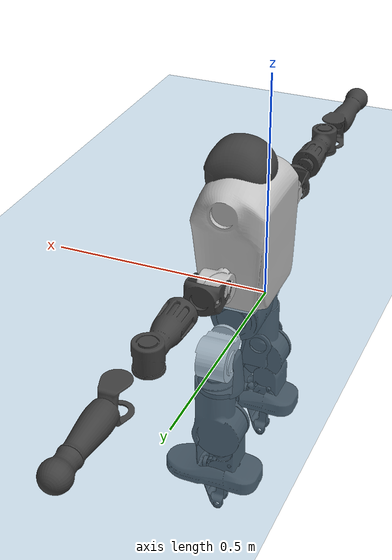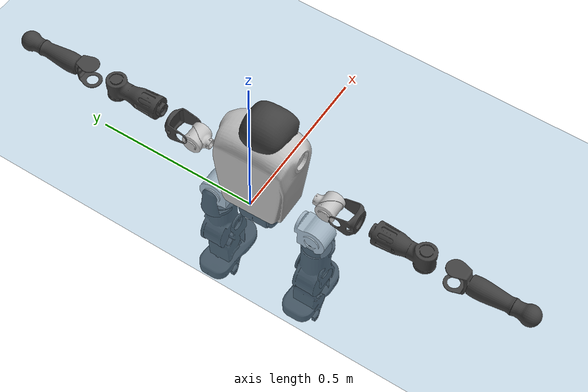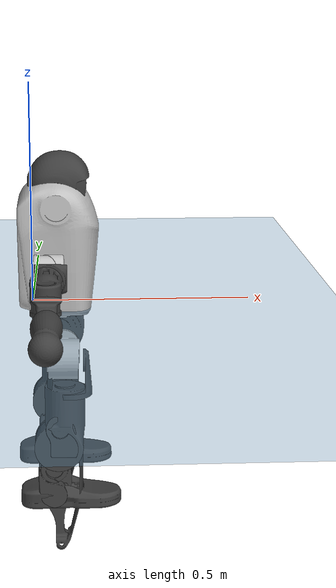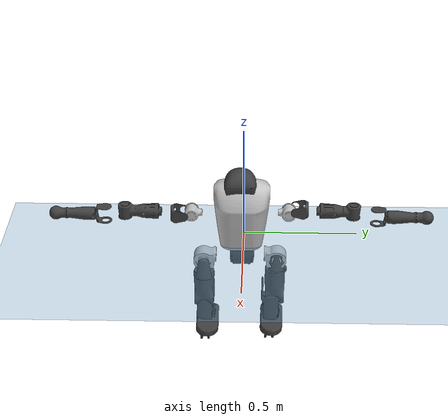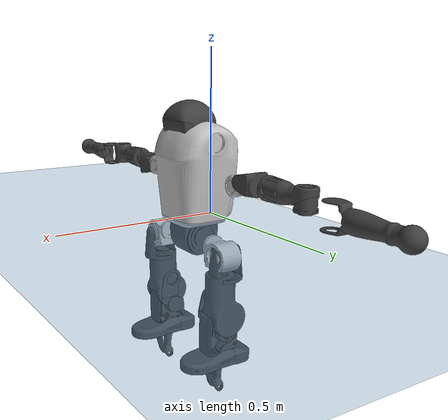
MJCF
<mujoco model="T1">
  <compiler angle="radian" assetdir="assets" balanceinertia="true" inertiafromgeom="false"/>

  <option timestep="0.005" density="1.2" viscosity="2e-05"/>

  <size nkey="1"/>

  <visual>
    <quality shadowsize="8192"/>
    <map shadowclip="0.5"/>
  </visual>

  <default>
    <default class="/">
      <joint armature="0.01" damping="0.01" frictionloss="0.1"/>
      <geom contype="0" conaffinity="0" group="1" solref="-1000 -80"/>
      <site size="0.01 0.005 0.005" group="5"/>
      <general forcelimited="true" biastype="affine" gainprm="25" biasprm="0 -25 -0.6"/>
      <default class="t1">
        <geom rgba="0.25 0.25 0.25 1"/>
        <default class="visual">
          <geom type="mesh" group="2"/>
        </default>
        <default class="collision">
          <geom group="3"/>
        </default>
        <default class="foot">
          <geom size="0.1115 0.05 0.015" type="box" condim="6" group="4" priority="1" solimp="0.015 1 0.015"/>
        </default>
        <default class="reward_collision_sphere">
          <geom group="5" rgba="1 0 0 1"/>
        </default>
      </default>
    </default>
  </default>

  <asset>
    <texture type="skybox" colorspace="auto" name="//unnamed_texture_0" builtin="gradient" rgb1="0.95 0.95 0.95" rgb2="0.95 0.95 0.95" width="100" height="600"/>
    <texture type="2d" colorspace="auto" name="texplane" builtin="checker" rgb1="0.345 0.575 0.748" rgb2="0.345 0.575 0.748" markrgb="1 1 1" width="512" height="512"/>
    <material name="MatPlane" class="/" texture="texplane" texuniform="true" texrepeat="2 2" specular="0.9"/>
    <mesh name="Trunk" class="/" file="Trunk.stl"/>
    <mesh name="H1" class="/" file="H1.stl"/>
    <mesh name="H2" class="/" file="H2.stl"/>
    <mesh name="AL1" class="/" file="AL1.stl"/>
    <mesh name="AL2" class="/" file="AL2.stl"/>
    <mesh name="AL3" class="/" file="AL3.stl"/>
    <mesh name="left_hand_link" class="/" file="left_hand_link.stl"/>
    <mesh name="AR1" class="/" file="AR1.stl"/>
    <mesh name="AR2" class="/" file="AR2.stl"/>
    <mesh name="AR3" class="/" file="AR3.stl"/>
    <mesh name="right_hand_link" class="/" file="right_hand_link.stl"/>
    <mesh name="Waist" class="/" file="Waist.stl"/>
    <mesh name="Hip_Pitch_Left" class="/" file="Hip_Pitch_Left.stl"/>
    <mesh name="Hip_Roll_Left" class="/" file="Hip_Roll_Left.stl"/>
    <mesh name="Hip_Yaw_Left" class="/" file="Hip_Yaw_Left.stl"/>
    <mesh name="Shank_Left" class="/" file="Shank_Left.stl"/>
    <mesh name="Ankle_Cross_Left" class="/" file="Ankle_Cross_Left.stl"/>
    <mesh name="left_foot_link" class="/" file="left_foot_link.stl"/>
    <mesh name="Hip_Pitch_Right" class="/" file="Hip_Pitch_Right.stl"/>
    <mesh name="Hip_Roll_Right" class="/" file="Hip_Roll_Right.stl"/>
    <mesh name="Hip_Yaw_Right" class="/" file="Hip_Yaw_Right.stl"/>
    <mesh name="Shank_Right" class="/" file="Shank_Right.stl"/>
    <mesh name="Ankle_Cross_Right" class="/" file="Ankle_Cross_Right.stl"/>
    <mesh name="right_foot_link" class="/" file="right_foot_link.stl"/>
  </asset>

  <worldbody>
    <geom name="floor" class="/" size="100 100 0.125" type="plane" group="0" material="MatPlane"/>
    <light name="toplight_shadow" class="/" pos="0 0 5" dir="0.0990148 0.0990148 -0.990148" type="directional" ambient="0.04 0.04 0.04" diffuse="0.55 0.55 0.55" specular="0.12 0.12 0.12"/>
    <light name="toplight_fill" class="/" pos="0 0 5" dir="0.0990148 0.0990148 -0.990148" type="directional" castshadow="false" ambient="0.04 0.04 0.04" diffuse="0.3 0.3 0.3" specular="0.08 0.08 0.08"/>
    <body name="trunk" childclass="t1" pos="-2.58964e-05 -0.0106681 0.0150883" quat="0.999968 -0.00612547 -0.000811864 0.00512128">
      <inertial pos="0.0480543 0.000567874 0.055522" quat="0.999954 0.00292331 -0.00911024 -0.000166406" mass="13.7339" diaginertia="0.0773584 0.845363 0.0037223"/>
      <joint name="//unnamed_joint_0" type="free" armature="0" damping="0" frictionloss="0"/>
      <geom name="//unnamed_geom_1" class="visual" rgba="0.76 0.76 0.76 1" mesh="Trunk"/>
      <geom name="//unnamed_geom_2" class="collision" size="0.0766715 0.102229 0.153343" pos="0.0549387 0 0.0660803" type="box"/>
      <geom name="//unnamed_geom_3" class="reward_collision_sphere" size="0.117563" pos="0.0549387 0 0.0550669"/>
      <geom name="//unnamed_geom_4" class="reward_collision_sphere" size="0.0153343" pos="0.0549387 0.136046 0"/>
      <geom name="//unnamed_geom_5" class="reward_collision_sphere" size="0.0153343" pos="0.0549387 -0.136046 0"/>
      <geom name="//unnamed_geom_6" class="reward_collision_sphere" size="0.0153343" pos="0.0549387 0.171258 0.0991205"/>
      <geom name="//unnamed_geom_7" class="reward_collision_sphere" size="0.0153343" pos="0.0549387 -0.171258 0.0991205"/>
      <site name="imu" pos="0.0744372 0.0149496 0.00250248" size="0.0102229"/>
      <camera name="track" pos="0 -3.20109 0" quat="0.707107 0.707107 0 0" mode="trackcom"/>
      <camera name="ego_camera" pos="0.111709 0 0.231281" quat="-0.5 -0.5 0.5 0.5"/>
      <body name="H1" pos="0.0463914 -0.000429333 0.122563" quat="0.999974 0.00401562 0.00452243 0.00389276">
        <inertial pos="-0.0130853 -0.0111293 0.0259592" quat="0.757317 -0.0101752 -0.000630188 0.652968" mass="0.3881" diaginertia="0.000129471 0.00183368 8.16454e-06"/>
        <joint name="AAHead_yaw" pos="0 0 0" axis="-0.012009 -0.00113501 0.999927" stiffness="0.00243642" range="-1.23652 1.69152" armature="0.00892145" damping="0.0485992" frictionloss="0.0636344"/>
        <geom name="//unnamed_geom_8" class="visual" mesh="H1"/>
        <body name="H2" pos="0.00571161 -0.00596794 0.0224144" quat="0.99997 -0.00112331 -0.00712888 0.00293957">
          <inertial pos="0.00267957 -0.00248618 0.0545045" quat="0.988681 0.106005 -0.0712382 -0.078732" mass="0.80539" diaginertia="0.00149421 0.0232102 8.79688e-05"/>
          <joint name="Head_pitch" pos="0 0 0" axis="-0.0591718 -0.997311 0.043237" stiffness="0.042501" range="-0.985381 0.0494584" armature="0.00362001" damping="0" frictionloss="0.022472"/>
          <geom name="//unnamed_geom_9" class="visual" mesh="H2"/>
          <geom name="//unnamed_geom_10" class="collision" size="0.081783" pos="0.00915646 0 0.0605736"/>
          <geom name="//unnamed_geom_11" class="reward_collision_sphere" size="0.0920058" pos="0.0183129 0 0.0550669"/>
        </body>
      </body>
      <body name="AL1" pos="0.0374833 0.160128 0.111263" quat="0.999998 0.000294175 0.00181613 0.000248321">
        <inertial pos="0.015254 0.0799837 0.00865802" quat="0.518828 0.490581 -0.537353 0.448777" mass="0.63525" diaginertia="0.000916098 0.0121038 1.72944e-05"/>
        <joint name="Left_Shoulder_Pitch" pos="0 0 0" axis="-0.00945781 0.999913 0.00915013" range="-3.22431 1.2262" armature="0.00849454" damping="0" frictionloss="0.142208"/>
        <geom name="//unnamed_geom_12" class="visual" rgba="0.76 0.76 0.76 1" mesh="AL1"/>
        <body name="AL2" pos="-0.00124854 0.0761786 0.0153039" quat="0.999972 -0.00310841 -0.00634864 -0.00233302">
          <inertial pos="0.0109232 0.0617397 0.0137157" quat="0.504792 0.501466 -0.509686 0.48367" mass="0.143195" diaginertia="0.000274362 0.00406388 8.2262e-06"/>
          <joint name="Left_Shoulder_Roll" pos="0 0 0" axis="-0.997134 -0.0159511 0.0739497" range="-1.57877 1.84705" armature="0.00800299" damping="0" frictionloss="0.179005"/>
          <geom name="//unnamed_geom_13" class="visual" mesh="AL2"/>
          <body name="AL3" pos="0.0154023 0.105702 0.00392449" quat="0.999999 -0.000320081 0.00148372 0.000104987">
            <inertial pos="0.00460644 0.136365 -0.0139788" quat="0.707014 0.707198 0.00036619 0.00127698" mass="1.10728" diaginertia="0.00734933 0.13763 3.47637e-05"/>
            <joint name="Left_Elbow_Pitch" pos="0 0 0" axis="0.0194244 -0.997455 -0.0685998" range="-2.36383 2.26079" armature="0.0138764" damping="0.01105" frictionloss="0.0615186"/>
            <geom name="//unnamed_geom_14" class="visual" mesh="AL3"/>
            <geom name="//unnamed_geom_15" class="collision" size="0.0306686 0.0766715" pos="0 0.0800273 0" quat="0.707105 0.707108 0 0" type="cylinder"/>
            <geom name="//unnamed_geom_16" class="reward_collision_sphere" size="0.0368023"/>
            <body name="left_hand_link" pos="0.0108112 0.249995 -0.0160976" quat="0.999993 0.00239439 -0.00171932 -0.00208643">
              <inertial pos="0.000152299 0.166876 -0.0113762" quat="0.705939 0.708238 0.00158579 0.0068552" mass="0.308376" diaginertia="0.00502539 0.0590274 8.76744e-06"/>
              <joint name="Left_Elbow_Yaw" pos="0 0 0" axis="0.0349295 0.0594757 0.997618" stiffness="0.0582405" range="-2.57177 -0.0280905" armature="0.00884749" damping="0.00147089" frictionloss="0.0485372"/>
              <geom name="//unnamed_geom_17" class="visual" mesh="left_hand_link"/>
              <geom name="//unnamed_geom_18" class="collision" size="0.0306686 0.0894501" pos="0 0.208071 0" quat="0.707105 0.707108 0 0" type="cylinder"/>
              <geom name="//unnamed_geom_19" class="reward_collision_sphere" size="0.0511143"/>
              <geom name="//unnamed_geom_20" class="reward_collision_sphere" size="0.03578" pos="0 0.17606 0"/>
              <geom name="//unnamed_geom_21" class="reward_collision_sphere" size="0.03578" pos="0 0.344117 0"/>
            </body>
          </body>
        </body>
      </body>
      <body name="AR1" pos="0.0403661 -0.172739 0.107334" quat="0.999971 0.00213014 0.00702776 0.0019557">
        <inertial pos="-0.000738542 -0.0635675 -0.00522126" quat="0.537308 0.476313 -0.484361 0.499821" mass="0.629056" diaginertia="0.00111188 0.0147594 1.6283e-05"/>
        <joint name="Right_Shoulder_Pitch" pos="0 0 0" axis="-0.0120669 -0.999528 -0.0282476" stiffness="0.0679786" range="-1.23788 3.09612" armature="0.0134952" damping="0.0745299" frictionloss="0.0862345"/>
        <geom name="//unnamed_geom_22" class="visual" rgba="0.76 0.76 0.76 1" mesh="AR1"/>
        <body name="AR2" pos="0.00108306 -0.081816 -0.006438" quat="0.999987 -0.00449869 0.00144086 -0.00212807">
          <inertial pos="0.011301 -0.0613962 -0.0110475" quat="0.514281 0.486508 -0.514955 0.48337" mass="0.198017" diaginertia="0.000204129 0.0037659 1.03679e-05"/>
          <joint name="Right_Shoulder_Roll" pos="0 0 0" axis="-1 0.000196974 -0.000741297" stiffness="0.0115401" range="-1.85939 1.56397" armature="0.00900319" damping="0" frictionloss="0.0322122"/>
          <geom name="//unnamed_geom_23" class="visual" mesh="AR2"/>
          <body name="AR3" pos="-0.00525434 -0.10993 0.00664316" quat="0.999996 0.00282647 -0.000638761 -0.000621533">
            <inertial pos="0.0156046 -0.137617 -0.00526542" quat="0.688824 0.723103 0.0507756 -0.00809193" mass="0.837424" diaginertia="0.00887932 0.147858 3.12226e-05"/>
            <joint name="Right_Elbow_Pitch" pos="0 0 0" axis="0.0269194 0.998935 0.0374642" stiffness="0.0812272" range="-2.25363 2.45025" armature="0.0171249" damping="0.0139018" frictionloss="0.117691"/>
            <geom name="//unnamed_geom_24" class="visual" mesh="AR3"/>
            <geom name="//unnamed_geom_25" class="collision" size="0.0306686 0.0766715" pos="0 -0.0800273 0" quat="0.707105 0.707108 0 0" type="cylinder"/>
            <geom name="//unnamed_geom_26" class="reward_collision_sphere" size="0.0368023"/>
            <body name="right_hand_link" pos="0.00306748 -0.234072 -0.0156508" quat="1 -0.00038069 5.98228e-05 -2.75077e-06">
              <inertial pos="0.0107935 -0.187407 0.00668835" quat="0.69999 0.713512 -0.0141429 -0.0267347" mass="0.382938" diaginertia="0.00528998 0.103697 1.0761e-05"/>
              <joint name="Right_Elbow_Yaw" pos="0 0 0" axis="-0.018506 -0.0257686 0.999497" stiffness="0.0314787" range="0.0552186 2.43512" armature="0.0141906" damping="0.0477169" frictionloss="0.0904612"/>
              <geom name="//unnamed_geom_27" class="visual" mesh="right_hand_link"/>
              <geom name="//unnamed_geom_28" class="collision" size="0.0306686 0.0894501" pos="0 -0.208071 0" quat="0.707105 0.707108 0 0" type="cylinder"/>
              <geom name="//unnamed_geom_29" class="reward_collision_sphere" size="0.0511143"/>
              <geom name="//unnamed_geom_30" class="reward_collision_sphere" size="0.03578" pos="0 -0.17606 0"/>
              <geom name="//unnamed_geom_31" class="reward_collision_sphere" size="0.03578" pos="0 -0.344117 0"/>
            </body>
          </body>
        </body>
      </body>
      <body name="Waist" pos="0.057315 0.00440832 -0.0743717" quat="1 -0.000203349 9.92821e-06 -8.05464e-05">
        <inertial pos="-0.00740821 -0.00137186 -0.0037138" quat="0.983846 -0.00520837 -0.178931 0.00208013" mass="2.6161" diaginertia="0.00365927 0.0427831 0.000253715"/>
        <joint name="Waist" pos="0 0 0" axis="-0.0154838 0.0239081 0.999594" stiffness="0.0510981" range="-1.33392 1.38762" armature="0.010483" damping="0.0822073" frictionloss="0.100658"/>
        <geom name="//unnamed_geom_32" class="visual" mesh="Waist"/>
        <body name="Hip_Pitch_Left" pos="-0.00158449 0.153442 -0.0137468" quat="1 6.64593e-05 5.29134e-06 5.86471e-05">
          <inertial pos="0.0111503 -0.0131409 0.00603667" quat="0.977243 0.209109 0.0318764 -0.0159557" mass="0.901308" diaginertia="0.00102006 0.0150767 6.0569e-05"/>
          <joint name="Left_Hip_Pitch" pos="0 0 0" axis="0.0281886 0.998753 -0.0412034" stiffness="0.0639313" range="-2.0569 1.54375" armature="0.010613" damping="0.0746329" frictionloss="0.169915"/>
          <geom name="//unnamed_geom_33" class="visual" rgba="0.76 0.76 0.76 1" mesh="Hip_Pitch_Left"/>
          <body name="Hip_Roll_Left" pos="-0.00835174 -0.000555075 -0.0112624" quat="1 -1.99655e-05 -6.80903e-05 -4.292e-05">
            <inertial pos="0.0030709 0.00480623 -0.0296368" quat="0.703703 -0.0365548 -0.0339937 0.708738" mass="0.36326" diaginertia="0.00101455 0.011937 2.19288e-05"/>
            <joint name="Left_Hip_Roll" pos="0 0 0" axis="-0.999413 0.0232268 0.0251885" range="-1.80043 0.1896" armature="0.0108316" damping="0" frictionloss="0.160875"/>
            <geom name="//unnamed_geom_34" class="visual" mesh="Hip_Roll_Left"/>
            <geom name="//unnamed_geom_35" class="reward_collision_sphere" size="0.0562258"/>
            <body name="Hip_Yaw_Left" pos="0.0123913 -0.00436774 -0.0612348" quat="1 -6.61926e-05 7.4848e-05 -1.19948e-07">
              <inertial pos="-0.0112905 -0.000926325 -0.0344668" quat="0.68301 -0.0246527 -0.00448535 0.729979" mass="2.60413" diaginertia="0.0129339 0.241202 0.000129247"/>
              <joint name="Left_Hip_Yaw" pos="0 0 0" axis="-0.0115043 -0.0585279 -0.998219" stiffness="0.0823247" range="-0.998895 0.765096" armature="0.0165841" damping="0.0604083" frictionloss="0.173145"/>
              <geom name="//unnamed_geom_36" class="visual" mesh="Hip_Yaw_Left"/>
              <geom name="//unnamed_geom_37" class="collision" size="0.0511143 0.081783" type="cylinder"/>
              <body name="Shank_Left" pos="-0.00275835 -0.0145355 -0.0870911" quat="0.999969 -0.00716199 0.0029288 -0.00123871">
                <inertial pos="-0.01447 0.0169499 -0.0611119" quat="0.995797 0.0703652 -0.016009 0.0563912" mass="1.65974" diaginertia="0.0166842 0.332084 8.17444e-05"/>
                <joint name="Left_Knee_Pitch" pos="0 0 0" axis="0.0341665 0.998927 -0.0312579" range="0.113239 2.33026" armature="0.00435724" damping="0.037125" frictionloss="0.175883"/>
                <geom name="//unnamed_geom_38" class="visual" mesh="Shank_Left"/>
                <geom name="//unnamed_geom_39" class="collision" size="0.0511143 0.0766715" pos="0 0 -0.0660803" type="cylinder"/>
                <geom name="//unnamed_geom_40" class="reward_collision_sphere" size="0.0664486"/>
                <body name="Ankle_Cross_Left" pos="0.0155403 0.0071464 -0.157758" quat="1 -0.000353535 0.000179102 0.000226968">
                  <inertial pos="-0.0060555 0.00270261 -0.00620876" quat="0.478782 0.486646 0.565029 0.463342" mass="0.0657087" diaginertia="1.84352e-05 0.000257397 5.28012e-07"/>
                  <joint name="Left_Ankle_Pitch" pos="0 0 0" axis="-0.0492493 0.998685 0.014227" range="-0.873992 0.624139" armature="0.0105655" damping="0.00224106" frictionloss="0.105717"/>
                  <geom name="//unnamed_geom_41" class="visual" mesh="Ankle_Cross_Left"/>
                  <body name="left_foot_link" pos="-0.0117188 -0.00121877 -0.0101196" quat="0.999986 -0.00195597 -0.000930682 -0.0047874">
                    <inertial pos="-0.00203541 -0.000338717 -0.0213709" quat="0.00356796 0.61889 -0.000248143 0.78547" mass="0.901686" diaginertia="0.00216535 0.0280463 0.00013467"/>
                    <joint name="Left_Ankle_Roll" pos="0 0 0" axis="-0.998775 0.0467485 0.0161947" range="-0.21509 0.276527" armature="0.00978292" damping="0" frictionloss="0.104319"/>
                    <geom name="//unnamed_geom_42" class="visual" mesh="left_foot_link"/>
                    <geom name="left_foot" class="foot" size="0.0525008 0.0225355 0.0104175" pos="0.00915646 0 -0.00826004"/>
                    <geom name="//unnamed_geom_44" class="reward_collision_sphere" size="0.0531589" pos="0.00915646 0 -0.00826004"/>
                    <geom name="//unnamed_geom_45" class="reward_collision_sphere" size="0.0306686" pos="0.0869863 -0.0368126 -0.00826004"/>
                    <geom name="//unnamed_geom_46" class="reward_collision_sphere" size="0.0306686" pos="-0.0640952 -0.0368126 -0.00826004"/>
                    <site name="left_foot" class="foot" pos="0.00915646 0 -0.00826004" size="0.0102229"/>
                  </body>
                </body>
              </body>
            </body>
          </body>
        </body>
        <body name="Hip_Pitch_Right" pos="0.011982 -0.170297 -0.0137229" quat="0.999973 0.00332912 0.00382557 -0.00536983">
          <inertial pos="0.00200332 0.0278972 -0.0155599" quat="0.964459 -0.263748 0.0111298 0.0114534" mass="1.01325" diaginertia="0.00103252 0.0141103 5.19516e-05"/>
          <joint name="Right_Hip_Pitch" pos="0 0 0" axis="-0.00551214 -0.999943 0.00912064" stiffness="0.0492795" range="-1.77694 2.07259" armature="0.00995758" damping="0" frictionloss="0.022994"/>
          <geom name="//unnamed_geom_47" class="visual" rgba="0.76 0.76 0.76 1" mesh="Hip_Pitch_Right"/>
          <body name="Hip_Roll_Right" pos="0.0140776 0.00190683 -0.0233478" quat="1 0.000742973 2.58578e-05 0.000342853">
            <inertial pos="0.00794795 0.000479521 -0.0382374" quat="0.704436 -0.00506206 -0.00766624 0.709708" mass="0.412727" diaginertia="0.00136217 0.0145282 2.39367e-05"/>
            <joint name="Right_Hip_Roll" pos="0 0 0" axis="-0.998955 0.0247903 0.0383886" range="-0.414394 1.7161" armature="0.0100704" damping="0.0516511" frictionloss="0.0362447"/>
            <geom name="//unnamed_geom_48" class="visual" mesh="Hip_Roll_Right"/>
            <geom name="//unnamed_geom_49" class="reward_collision_sphere" size="0.0562258"/>
            <body name="Hip_Yaw_Right" pos="-0.0124853 -0.000495607 -0.0583938" quat="1 -0.000111597 7.90425e-05 -0.000145581">
              <inertial pos="0.00662361 -0.0165719 -0.0540138" quat="0.718963 -0.0286669 -0.0364372 0.6935" mass="3.03765" diaginertia="0.016436 0.293229 0.00017289"/>
              <joint name="Right_Hip_Yaw" pos="0 0 0" axis="0.0358963 0.00586631 -0.999338" stiffness="0.0229116" range="-1.09048 0.948063" armature="0.0106624" damping="0" frictionloss="0.0985666"/>
              <geom name="//unnamed_geom_50" class="visual" mesh="Hip_Yaw_Right"/>
              <geom name="//unnamed_geom_51" class="collision" size="0.0511143 0.081783" type="cylinder"/>
              <body name="Shank_Right" pos="-0.0105286 0.00167419 -0.089509" quat="1 -0.000872576 -0.000247911 -0.000238481">
                <inertial pos="0.0117098 -0.00739553 -0.0565417" quat="0.99718 0.0349069 0.0433399 -0.0503435" mass="1.96579" diaginertia="0.0286838 0.373224 0.000115827"/>
                <joint name="Right_Knee_Pitch" pos="0 0 0" axis="-0.00231321 -0.999991 -0.0034369" range="-2.35022 0.280934" armature="0.0103017" damping="0" frictionloss="0.15973"/>
                <geom name="//unnamed_geom_52" class="visual" mesh="Shank_Right"/>
                <geom name="//unnamed_geom_53" class="collision" size="0.0511143 0.0766715" pos="0 0 -0.0660803" type="cylinder"/>
                <geom name="//unnamed_geom_54" class="reward_collision_sphere" size="0.0664486"/>
                <body name="Ankle_Cross_Right" pos="0.00929989 0.00847843 -0.140567" quat="0.999994 0.000765803 0.000979568 0.00327904">
                  <inertial pos="-0.00214061 0.00925458 -0.00213333" quat="0.456984 0.550401 0.515458 0.471727" mass="0.0941173" diaginertia="1.99969e-05 0.000302906 6.23582e-07"/>
                  <joint name="Right_Ankle_Pitch" pos="0 0 0" axis="-1.1209e-05 -1 0.000105068" range="-0.688507 0.659652" armature="0.0120257" damping="0" frictionloss="0.102941"/>
                  <geom name="//unnamed_geom_55" class="visual" mesh="Ankle_Cross_Right"/>
                  <body name="right_foot_link" pos="0.00382052 0.00432586 -0.0170733" quat="1 -0.000214968 1.96863e-05 0.000502664">
                    <inertial pos="-0.00276193 0.00744757 -0.0209798" quat="0.00649703 0.635401 -0.00240254 0.772151" mass="0.763539" diaginertia="0.00173011 0.0280703 0.000117902"/>
                    <joint name="Right_Ankle_Roll" pos="0 0 0" axis="-0.999998 -0.0020664 -0.000755328" range="-0.323403 0.414282" armature="0.00874765" damping="0.0417303" frictionloss="0.0160636"/>
                    <geom name="//unnamed_geom_56" class="visual" mesh="right_foot_link"/>
                    <geom name="right_foot" class="foot" size="0.0648591 0.0824786 0.00561979" pos="0.00915646 0 -0.00826004"/>
                    <geom name="//unnamed_geom_58" class="reward_collision_sphere" size="0.0408915"/>
                    <geom name="//unnamed_geom_59" class="reward_collision_sphere" size="0.0306686" pos="0.00915646 0 -0.00826004"/>
                    <geom name="//unnamed_geom_60" class="reward_collision_sphere" size="0.0306686" pos="0.0869863 0.0368126 -0.00826004"/>
                    <geom name="//unnamed_geom_61" class="reward_collision_sphere" size="0.0306686" pos="-0.0640952 0.0368126 -0.00826004"/>
                    <site name="right_foot" class="foot" pos="0.00915646 0 -0.00826004" size="0.0102229"/>
                  </body>
                </body>
              </body>
            </body>
          </body>
        </body>
      </body>
    </body>
  </worldbody>

  <contact>
    <pair class="/" geom1="floor" geom2="left_foot" name="//unnamed_contact_0"/>
    <pair class="/" geom1="floor" geom2="right_foot" name="//unnamed_contact_1"/>
  </contact>

  <actuator>
    <general name="AAHead_yaw" class="/" joint="AAHead_yaw" forcerange="-6.93294 6.93294" gainprm="17.6792" biasprm="0 -17.6792 -0.592455"/>
    <general name="Head_pitch" class="/" joint="Head_pitch" forcerange="-4.87863 4.87863" gainprm="17.6792" biasprm="0 -17.6792 -0.592455"/>
    <general name="Left_Shoulder_Pitch" class="/" joint="Left_Shoulder_Pitch" forcerange="-24.0295 24.0295" gainprm="17.6792" biasprm="0 -17.6792 -0.592455"/>
    <general name="Left_Shoulder_Roll" class="/" joint="Left_Shoulder_Roll" forcerange="-14.326 14.326" gainprm="17.6792" biasprm="0 -17.6792 -0.592455"/>
    <general name="Left_Elbow_Pitch" class="/" joint="Left_Elbow_Pitch" forcerange="-27.7271 27.7271" gainprm="17.6792" biasprm="0 -17.6792 -0.592455"/>
    <general name="Left_Elbow_Yaw" class="/" joint="Left_Elbow_Yaw" forcerange="-18.19 18.19" gainprm="17.6792" biasprm="0 -17.6792 -0.592455"/>
    <general name="Right_Shoulder_Pitch" class="/" joint="Right_Shoulder_Pitch" forcerange="-15.0368 15.0368" gainprm="17.6792" biasprm="0 -17.6792 -0.592455"/>
    <general name="Right_Shoulder_Roll" class="/" joint="Right_Shoulder_Roll" forcerange="-11.4762 11.4762" gainprm="17.6792" biasprm="0 -17.6792 -0.592455"/>
    <general name="Right_Elbow_Pitch" class="/" joint="Right_Elbow_Pitch" forcerange="-18.4358 18.4358" gainprm="17.6792" biasprm="0 -17.6792 -0.592455"/>
    <general name="Right_Elbow_Yaw" class="/" joint="Right_Elbow_Yaw" forcerange="-17.0202 17.0202" gainprm="17.6792" biasprm="0 -17.6792 -0.592455"/>
    <general name="Waist" class="/" joint="Waist" forcerange="-32.9518 32.9518" gainprm="17.6792" biasprm="0 -17.6792 -0.592455"/>
    <general name="Left_Hip_Pitch" class="/" joint="Left_Hip_Pitch" forcerange="-45.1538 45.1538" gainprm="17.6792" biasprm="0 -17.6792 -0.592455"/>
    <general name="Left_Hip_Roll" class="/" joint="Left_Hip_Roll" forcerange="-12.8098 12.8098" gainprm="17.6792" biasprm="0 -17.6792 -0.592455"/>
    <general name="Left_Hip_Yaw" class="/" joint="Left_Hip_Yaw" forcerange="-42.5537 42.5537" gainprm="17.6792" biasprm="0 -17.6792 -0.592455"/>
    <general name="Left_Knee_Pitch" class="/" joint="Left_Knee_Pitch" forcerange="-26.9713 26.9713" gainprm="17.6792" biasprm="0 -17.6792 -0.592455"/>
    <general name="Left_Ankle_Pitch" class="/" joint="Left_Ankle_Pitch" forcerange="-28.2008 28.2008" gainprm="17.6792" biasprm="0 -17.6792 -0.592455"/>
    <general name="Left_Ankle_Roll" class="/" joint="Left_Ankle_Roll" forcerange="-20.8095 20.8095" gainprm="17.6792" biasprm="0 -17.6792 -0.592455"/>
    <general name="Right_Hip_Pitch" class="/" joint="Right_Hip_Pitch" forcerange="-70.1 70.1" gainprm="17.6792" biasprm="0 -17.6792 -0.592455"/>
    <general name="Right_Hip_Roll" class="/" joint="Right_Hip_Roll" forcerange="-34.816 34.816" gainprm="17.6792" biasprm="0 -17.6792 -0.592455"/>
    <general name="Right_Hip_Yaw" class="/" joint="Right_Hip_Yaw" forcerange="-18.4947 18.4947" gainprm="17.6792" biasprm="0 -17.6792 -0.592455"/>
    <general name="Right_Knee_Pitch" class="/" joint="Right_Knee_Pitch" forcerange="-62.4756 62.4756" gainprm="17.6792" biasprm="0 -17.6792 -0.592455"/>
    <general name="Right_Ankle_Pitch" class="/" joint="Right_Ankle_Pitch" forcerange="-20.7322 20.7322" gainprm="17.6792" biasprm="0 -17.6792 -0.592455"/>
    <general name="Right_Ankle_Roll" class="/" joint="Right_Ankle_Roll" forcerange="-16.6779 16.6779" gainprm="17.6792" biasprm="0 -17.6792 -0.592455"/>
  </actuator>

  <sensor>
    <gyro site="imu" name="imu_angular_velocity"/>
    <velocimeter site="imu" name="imu_linear_velocity"/>
    <framelinvel objtype="site" objname="left_foot" name="left_foot_global_linear_velocity"/>
    <framelinvel objtype="site" objname="right_foot" name="right_foot_global_linear_velocity"/>
  </sensor>

  <keyframe>
    <key name="home" qpos="0 0 0.6385 1 0 0 0 0 0 0 1.4 0 -0.4 0 -1.4 0 0.4 0 -0.4 0 0 0.8 -0.4 0 0.4 0 0 -0.8 0.4 0"/>
  </keyframe>
</mujoco>
